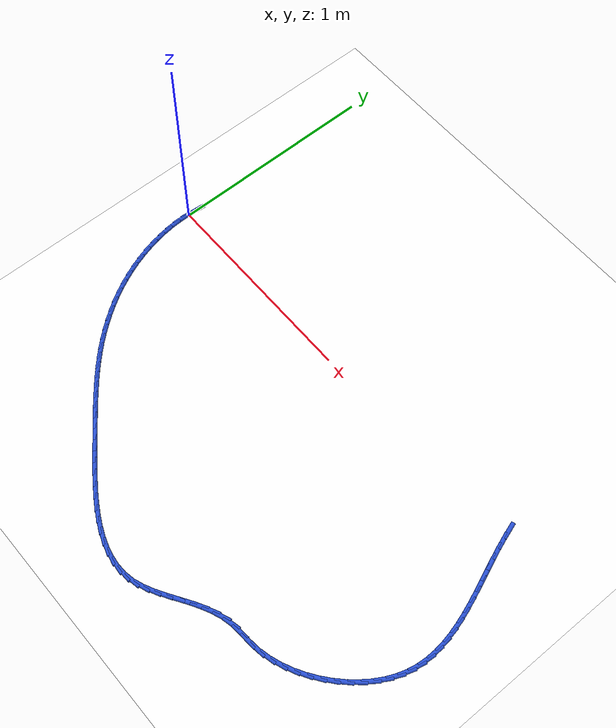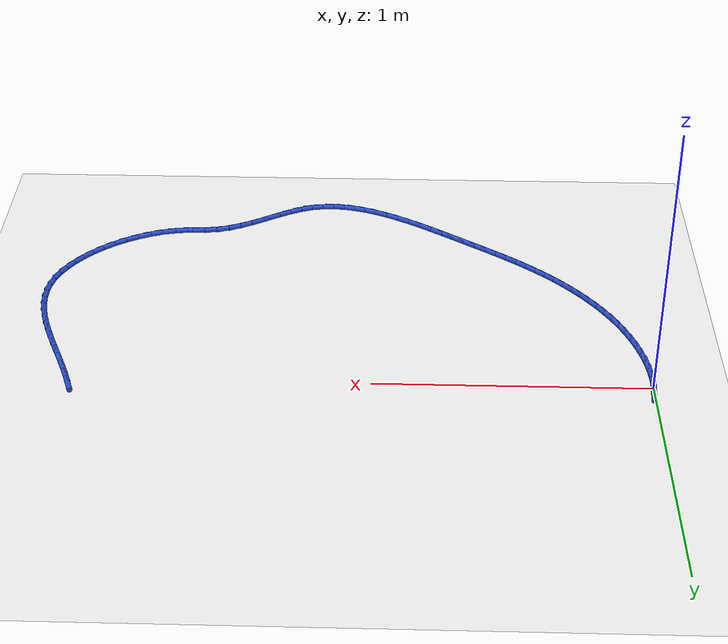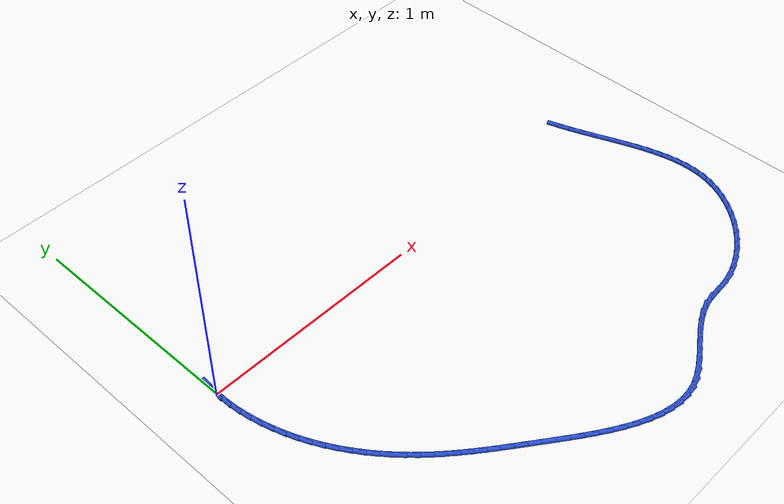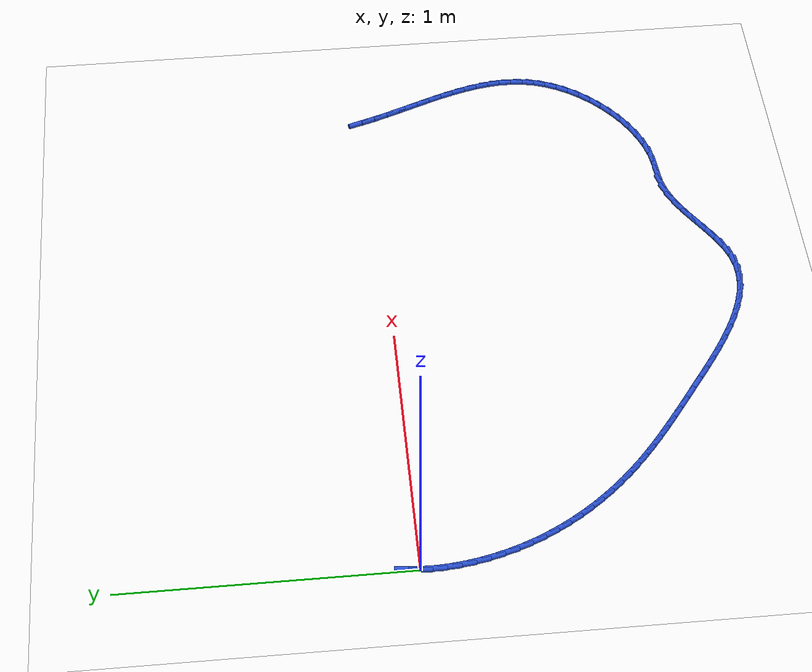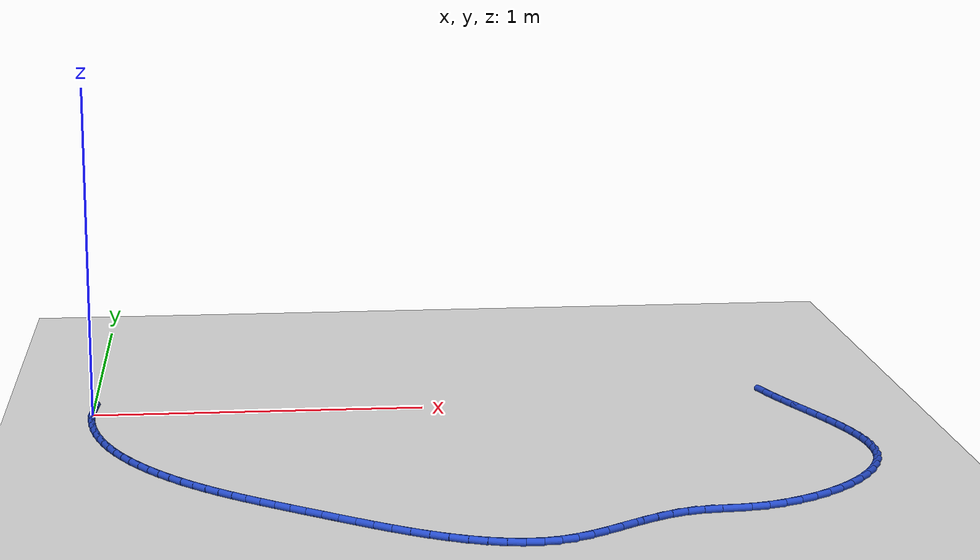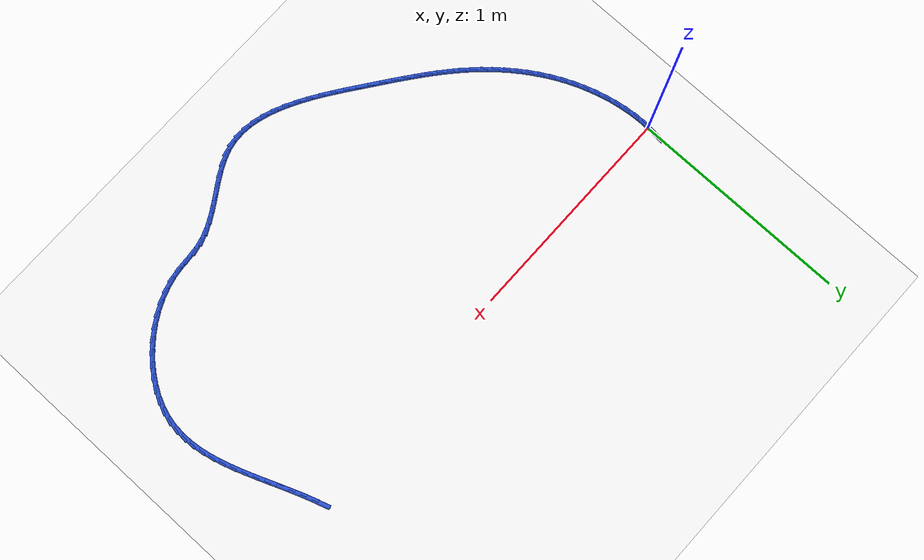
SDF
<sdf version="1.6">
 <world name="default">
  <model name="ground_plane">
   <static>1</static>
   <link name="link">
    <collision name="collision">
     <geometry><plane><normal>0 0 1</normal><size>100 100</size></plane></geometry>
     <surface><friction><ode><mu>100</mu><mu2>50</mu2></ode></friction></surface>
    </collision>
    <visual name="visual">
     <cast_shadows>0</cast_shadows>
     <geometry><plane><normal>0 0 1</normal><size>100 100</size></plane></geometry>
     <material>
      <script><uri>file://media/materials/scripts/gazebo.material</uri><name>Gazebo/WhiteGlow</name></script>
     </material>
    </visual>
   </link>
  </model>
  <model name="line">
   <link name="link_0">
    <pose>-6.938893903907228e-18 -1.249000902703301e-16 0.01 0 1.57 1.4895754016602116</pose>
    <collision name="collision">
     <geometry><cylinder><radius>0.01</radius><length>0.08</length></cylinder></geometry>
    </collision>
    <visual name="visual">
     <material>
      <script><name>Gazebo/Blue</name><uri>file://media/materials/scripts/gazebo.material</uri></script>
     </material>
     <geometry><cylinder><radius>0.01</radius><length>0.08</length></cylinder></geometry>
    </visual>
   </link>
   <link name="link_82">
    <pose>2.0744483165461785 0.045854442263884014 0.01 0 1.57 -1.2577375364356858</pose>
    <collision name="collision">
     <geometry><cylinder><radius>0.01</radius><length>0.08</length></cylinder></geometry>
    </collision>
    <visual name="visual">
     <material>
      <script><name>Gazebo/Blue</name><uri>file://media/materials/scripts/gazebo.material</uri></script>
     </material>
     <geometry><cylinder><radius>0.01</radius><length>0.08</length></cylinder></geometry>
    </visual>
   </link>
   <link name="link_83">
    <pose>2.0903925591439925 -0.0034012618303590654 0.01 0 1.57 -1.2280962346139435</pose>
    <collision name="collision">
     <geometry><cylinder><radius>0.01</radius><length>0.08</length></cylinder></geometry>
    </collision>
    <visual name="visual">
     <material>
      <script><name>Gazebo/Blue</name><uri>file://media/materials/scripts/gazebo.material</uri></script>
     </material>
     <geometry><cylinder><radius>0.01</radius><length>0.08</length></cylinder></geometry>
    </visual>
   </link>
   <link name="link_84">
    <pose>2.1078701009060747 -0.052388459206468535 0.01 0 1.57 -1.2079499464928736</pose>
    <collision name="collision">
     <geometry><cylinder><radius>0.01</radius><length>0.08</length></cylinder></geometry>
    </collision>
    <visual name="visual">
     <material>
      <script><name>Gazebo/Blue</name><uri>file://media/materials/scripts/gazebo.material</uri></script>
     </material>
     <geometry><cylinder><radius>0.01</radius><length>0.08</length></cylinder></geometry>
    </visual>
   </link>
   <link name="link_85">
    <pose>2.1263643025142116 -0.10110150909986627 0.01 0 1.57 -1.1970554379580245</pose>
    <collision name="collision">
     <geometry><cylinder><radius>0.01</radius><length>0.08</length></cylinder></geometry>
    </collision>
    <visual name="visual">
     <material>
      <script><name>Gazebo/Blue</name><uri>file://media/materials/scripts/gazebo.material</uri></script>
     </material>
     <geometry><cylinder><radius>0.01</radius><length>0.08</length></cylinder></geometry>
    </visual>
   </link>
   <link name="link_86">
    <pose>2.1453585246501943 -0.14953477074597454 0.01 0 1.57 -1.1953407749682754</pose>
    <collision name="collision">
     <geometry><cylinder><radius>0.01</radius><length>0.08</length></cylinder></geometry>
    </collision>
    <visual name="visual">
     <material>
      <script><name>Gazebo/Blue</name><uri>file://media/materials/scripts/gazebo.material</uri></script>
     </material>
     <geometry><cylinder><radius>0.01</radius><length>0.08</length></cylinder></geometry>
    </visual>
   </link>
   <link name="link_87">
    <pose>2.164336127995808 -0.19768260338021587 0.01 0 1.57 -1.2029328211580739</pose>
    <collision name="collision">
     <geometry><cylinder><radius>0.01</radius><length>0.08</length></cylinder></geometry>
    </collision>
    <visual name="visual">
     <material>
      <script><name>Gazebo/Blue</name><uri>file://media/materials/scripts/gazebo.material</uri></script>
     </material>
     <geometry><cylinder><radius>0.01</radius><length>0.08</length></cylinder></geometry>
    </visual>
   </link>
   <link name="link_88">
    <pose>2.1827804732328424 -0.24553936623801081 0.01 0 1.57 -1.2201716969757062</pose>
    <collision name="collision">
     <geometry><cylinder><radius>0.01</radius><length>0.08</length></cylinder></geometry>
    </collision>
    <visual name="visual">
     <material>
      <script><name>Gazebo/Blue</name><uri>file://media/materials/scripts/gazebo.material</uri></script>
     </material>
     <geometry><cylinder><radius>0.01</radius><length>0.08</length></cylinder></geometry>
    </visual>
   </link>
   <link name="link_89">
    <pose>2.200174921043086 -0.2930994185547821 0.01 0 1.57 -1.2476115682412294</pose>
    <collision name="collision">
     <geometry><cylinder><radius>0.01</radius><length>0.08</length></cylinder></geometry>
    </collision>
    <visual name="visual">
     <material>
      <script><name>Gazebo/Blue</name><uri>file://media/materials/scripts/gazebo.material</uri></script>
     </material>
     <geometry><cylinder><radius>0.01</radius><length>0.08</length></cylinder></geometry>
    </visual>
   </link>
   <link name="link_90">
    <pose>2.216002832108326 -0.3403571195659518 0.01 0 1.57 -1.2860000337122557</pose>
    <collision name="collision">
     <geometry><cylinder><radius>0.01</radius><length>0.08</length></cylinder></geometry>
    </collision>
    <visual name="visual">
     <material>
      <script><name>Gazebo/Blue</name><uri>file://media/materials/scripts/gazebo.material</uri></script>
     </material>
     <geometry><cylinder><radius>0.01</radius><length>0.08</length></cylinder></geometry>
    </visual>
   </link>
   <link name="link_91">
    <pose>2.2297475671103513 -0.38730682850694187 0.01 0 1.57 -1.3362194620847128</pose>
    <collision name="collision">
     <geometry><cylinder><radius>0.01</radius><length>0.08</length></cylinder></geometry>
    </collision>
    <visual name="visual">
     <material>
      <script><name>Gazebo/Blue</name><uri>file://media/materials/scripts/gazebo.material</uri></script>
     </material>
     <geometry><cylinder><radius>0.01</radius><length>0.08</length></cylinder></geometry>
    </visual>
   </link>
   <link name="link_92">
    <pose>2.24089248673095 -0.4339429046131753 0.01 0 1.57 -1.3991636648186943</pose>
    <collision name="collision">
     <geometry><cylinder><radius>0.01</radius><length>0.08</length></cylinder></geometry>
    </collision>
    <visual name="visual">
     <material>
      <script><name>Gazebo/Blue</name><uri>file://media/materials/scripts/gazebo.material</uri></script>
     </material>
     <geometry><cylinder><radius>0.01</radius><length>0.08</length></cylinder></geometry>
    </visual>
   </link>
   <link name="link_93">
    <pose>2.2489209516519093 -0.48025970712007227 0.01 0 1.57 -1.4755173005332283</pose>
    <collision name="collision">
     <geometry><cylinder><radius>0.01</radius><length>0.08</length></cylinder></geometry>
    </collision>
    <visual name="visual">
     <material>
      <script><name>Gazebo/Blue</name><uri>file://media/materials/scripts/gazebo.material</uri></script>
     </material>
     <geometry><cylinder><radius>0.01</radius><length>0.08</length></cylinder></geometry>
    </visual>
   </link>
   <link name="link_94">
    <pose>2.253316322555019 -0.5262515952630556 0.01 0 1.57 -1.56541682555562</pose>
    <collision name="collision">
     <geometry><cylinder><radius>0.01</radius><length>0.08</length></cylinder></geometry>
    </collision>
    <visual name="visual">
     <material>
      <script><name>Gazebo/Blue</name><uri>file://media/materials/scripts/gazebo.material</uri></script>
     </material>
     <geometry><cylinder><radius>0.01</radius><length>0.08</length></cylinder></geometry>
    </visual>
   </link>
   <link name="link_95">
    <pose>2.2535619601220667 -0.5719129282775476 0.01 0 1.57 1.4735699993029112</pose>
    <collision name="collision">
     <geometry><cylinder><radius>0.01</radius><length>0.08</length></cylinder></geometry>
    </collision>
    <visual name="visual">
     <material>
      <script><name>Gazebo/Blue</name><uri>file://media/materials/scripts/gazebo.material</uri></script>
     </material>
     <geometry><cylinder><radius>0.01</radius><length>0.08</length></cylinder></geometry>
    </visual>
   </link>
   <link name="link_96">
    <pose>2.2491412250348404 -0.6172380653989707 0.01 0 1.57 1.360458322292428</pose>
    <collision name="collision">
     <geometry><cylinder><radius>0.01</radius><length>0.08</length></cylinder></geometry>
    </collision>
    <visual name="visual">
     <material>
      <script><name>Gazebo/Blue</name><uri>file://media/materials/scripts/gazebo.material</uri></script>
     </material>
     <geometry><cylinder><radius>0.01</radius><length>0.08</length></cylinder></geometry>
    </visual>
   </link>
   <link name="link_97">
    <pose>2.2395374779751283 -0.6622213658627455 0.01 0 1.57 1.241564870937588</pose>
    <collision name="collision">
     <geometry><cylinder><radius>0.01</radius><length>0.08</length></cylinder></geometry>
    </collision>
    <visual name="visual">
     <material>
      <script><name>Gazebo/Blue</name><uri>file://media/materials/scripts/gazebo.material</uri></script>
     </material>
     <geometry><cylinder><radius>0.01</radius><length>0.08</length></cylinder></geometry>
    </visual>
   </link>
   <link name="link_98">
    <pose>2.2242967695544067 -0.706828354622385 0.01 0 1.57 1.1297638072268865</pose>
    <collision name="collision">
     <geometry><cylinder><radius>0.01</radius><length>0.08</length></cylinder></geometry>
    </collision>
    <visual name="visual">
     <material>
      <script><name>Gazebo/Blue</name><uri>file://media/materials/scripts/gazebo.material</uri></script>
     </material>
     <geometry><cylinder><radius>0.01</radius><length>0.08</length></cylinder></geometry>
    </visual>
   </link>
   <link name="link_99">
    <pose>2.2035643880273112 -0.750748936811438 0.01 0 1.57 1.0289454798745357</pose>
    <collision name="collision">
     <geometry><cylinder><radius>0.01</radius><length>0.08</length></cylinder></geometry>
    </collision>
    <visual name="visual">
     <material>
      <script><name>Gazebo/Blue</name><uri>file://media/materials/scripts/gazebo.material</uri></script>
     </material>
     <geometry><cylinder><radius>0.01</radius><length>0.08</length></cylinder></geometry>
    </visual>
   </link>
   <link name="link_100">
    <pose>2.177818462976116 -0.7935199269359784 0.01 0 1.57 0.9365278144941417</pose>
    <collision name="collision">
     <geometry><cylinder><radius>0.01</radius><length>0.08</length></cylinder></geometry>
    </collision>
    <visual name="visual">
     <material>
      <script><name>Gazebo/Blue</name><uri>file://media/materials/scripts/gazebo.material</uri></script>
     </material>
     <geometry><cylinder><radius>0.01</radius><length>0.08</length></cylinder></geometry>
    </visual>
   </link>
   <link name="link_101">
    <pose>2.1475406889811723 -0.8346764997784397 0.01 0 1.57 0.850009218456636</pose>
    <collision name="collision">
     <geometry><cylinder><radius>0.01</radius><length>0.08</length></cylinder></geometry>
    </collision>
    <visual name="visual">
     <material>
      <script><name>Gazebo/Blue</name><uri>file://media/materials/scripts/gazebo.material</uri></script>
     </material>
     <geometry><cylinder><radius>0.01</radius><length>0.08</length></cylinder></geometry>
    </visual>
   </link>
   <link name="link_102">
    <pose>2.113212760622836 -0.8737538301212536 0.01 0 1.57 0.7670859299110546</pose>
    <collision name="collision">
     <geometry><cylinder><radius>0.01</radius><length>0.08</length></cylinder></geometry>
    </collision>
    <visual name="visual">
     <material>
      <script><name>Gazebo/Blue</name><uri>file://media/materials/scripts/gazebo.material</uri></script>
     </material>
     <geometry><cylinder><radius>0.01</radius><length>0.08</length></cylinder></geometry>
    </visual>
   </link>
   <link name="link_103">
    <pose>2.07531637248146 -0.910287092746854 0.01 0 1.57 0.6856227868303771</pose>
    <collision name="collision">
     <geometry><cylinder><radius>0.01</radius><length>0.08</length></cylinder></geometry>
    </collision>
    <visual name="visual">
     <material>
      <script><name>Gazebo/Blue</name><uri>file://media/materials/scripts/gazebo.material</uri></script>
     </material>
     <geometry><cylinder><radius>0.01</radius><length>0.08</length></cylinder></geometry>
    </visual>
   </link>
   <link name="link_104">
    <pose>2.0343332191373977 -0.943811462437674 0.01 0 1.57 0.6035908490146126</pose>
    <collision name="collision">
     <geometry><cylinder><radius>0.01</radius><length>0.08</length></cylinder></geometry>
    </collision>
    <visual name="visual">
     <material>
      <script><name>Gazebo/Blue</name><uri>file://media/materials/scripts/gazebo.material</uri></script>
     </material>
     <geometry><cylinder><radius>0.01</radius><length>0.08</length></cylinder></geometry>
    </visual>
   </link>
   <link name="link_105">
    <pose>1.9907449951710041 -0.9738621139761467 0.01 0 1.57 0.5190008773252767</pose>
    <collision name="collision">
     <geometry><cylinder><radius>0.01</radius><length>0.08</length></cylinder></geometry>
    </collision>
    <visual name="visual">
     <material>
      <script><name>Gazebo/Blue</name><uri>file://media/materials/scripts/gazebo.material</uri></script>
     </material>
     <geometry><cylinder><radius>0.01</radius><length>0.08</length></cylinder></geometry>
    </visual>
   </link>
   <link name="link_106">
    <pose>1.9450333951626315 -0.9999742221447058 0.01 0 1.57 0.4298521911400216</pose>
    <collision name="collision">
     <geometry><cylinder><radius>0.01</radius><length>0.08</length></cylinder></geometry>
    </collision>
    <visual name="visual">
     <material>
      <script><name>Gazebo/Blue</name><uri>file://media/materials/scripts/gazebo.material</uri></script>
     </material>
     <geometry><cylinder><radius>0.01</radius><length>0.08</length></cylinder></geometry>
    </visual>
   </link>
   <link name="link_107">
    <pose>1.8976801136926351 -1.0216829617257832 0.01 0 1.57 0.3341182242900263</pose>
    <collision name="collision">
     <geometry><cylinder><radius>0.01</radius><length>0.08</length></cylinder></geometry>
    </collision>
    <visual name="visual">
     <material>
      <script><name>Gazebo/Blue</name><uri>file://media/materials/scripts/gazebo.material</uri></script>
     </material>
     <geometry><cylinder><radius>0.01</radius><length>0.08</length></cylinder></geometry>
    </visual>
   </link>
   <link name="link_108">
    <pose>1.8491668453413688 -1.0385235075018129 0.01 0 1.57 0.22980051145742142</pose>
    <collision name="collision">
     <geometry><cylinder><radius>0.01</radius><length>0.08</length></cylinder></geometry>
    </collision>
    <visual name="visual">
     <material>
      <script><name>Gazebo/Blue</name><uri>file://media/materials/scripts/gazebo.material</uri></script>
     </material>
     <geometry><cylinder><radius>0.01</radius><length>0.08</length></cylinder></geometry>
    </visual>
   </link>
   <link name="link_109">
    <pose>1.799975284689185 -1.0500310342552275 0.01 0 1.57 0.11932294190830635</pose>
    <collision name="collision">
     <geometry><cylinder><radius>0.01</radius><length>0.08</length></cylinder></geometry>
    </collision>
    <visual name="visual">
     <material>
      <script><name>Gazebo/Blue</name><uri>file://media/materials/scripts/gazebo.material</uri></script>
     </material>
     <geometry><cylinder><radius>0.01</radius><length>0.08</length></cylinder></geometry>
    </visual>
   </link>
   <link name="link_110">
    <pose>1.750590470946116 -1.0559519025966868 0.01 0 1.57 0.06151139462050264</pose>
    <collision name="collision">
     <geometry><cylinder><radius>0.01</radius><length>0.08</length></cylinder></geometry>
    </collision>
    <visual name="visual">
     <material>
      <script><name>Gazebo/Blue</name><uri>file://media/materials/scripts/gazebo.material</uri></script>
     </material>
     <geometry><cylinder><radius>0.01</radius><length>0.08</length></cylinder></geometry>
    </visual>
   </link>
   <link name="link_111">
    <pose>1.7015440076915997 -1.0589726297070738 0.01 0 1.57 0.10272796894315886</pose>
    <collision name="collision">
     <geometry><cylinder><radius>0.01</radius><length>0.08</length></cylinder></geometry>
    </collision>
    <visual name="visual">
     <material>
      <script><name>Gazebo/Blue</name><uri>file://media/materials/scripts/gazebo.material</uri></script>
     </material>
     <geometry><cylinder><radius>0.01</radius><length>0.08</length></cylinder></geometry>
    </visual>
   </link>
   <link name="link_112">
    <pose>1.6534016428609282 -1.0639356677335263 0.01 0 1.57 0.2375193923929107</pose>
    <collision name="collision">
     <geometry><cylinder><radius>0.01</radius><length>0.08</length></cylinder></geometry>
    </collision>
    <visual name="visual">
     <material>
      <script><name>Gazebo/Blue</name><uri>file://media/materials/scripts/gazebo.material</uri></script>
     </material>
     <geometry><cylinder><radius>0.01</radius><length>0.08</length></cylinder></geometry>
    </visual>
   </link>
   <link name="link_113">
    <pose>1.606668436027198 -1.0752492691391327 0.01 0 1.57 0.377547363521522</pose>
    <collision name="collision">
     <geometry><cylinder><radius>0.01</radius><length>0.08</length></cylinder></geometry>
    </collision>
    <visual name="visual">
     <material>
      <script><name>Gazebo/Blue</name><uri>file://media/materials/scripts/gazebo.material</uri></script>
     </material>
     <geometry><cylinder><radius>0.01</radius><length>0.08</length></cylinder></geometry>
    </visual>
   </link>
   <link name="link_114">
    <pose>1.561329458170791 -1.093229419772321 0.01 0 1.57 0.47791247409523924</pose>
    <collision name="collision">
     <geometry><cylinder><radius>0.01</radius><length>0.08</length></cylinder></geometry>
    </collision>
    <visual name="visual">
     <material>
      <script><name>Gazebo/Blue</name><uri>file://media/materials/scripts/gazebo.material</uri></script>
     </material>
     <geometry><cylinder><radius>0.01</radius><length>0.08</length></cylinder></geometry>
    </visual>
   </link>
   <link name="link_115">
    <pose>1.5171082941486773 -1.1161342316203662 0.01 0 1.57 0.5411470724645226</pose>
    <collision name="collision">
     <geometry><cylinder><radius>0.01</radius><length>0.08</length></cylinder></geometry>
    </collision>
    <visual name="visual">
     <material>
      <script><name>Gazebo/Blue</name><uri>file://media/materials/scripts/gazebo.material</uri></script>
     </material>
     <geometry><cylinder><radius>0.01</radius><length>0.08</length></cylinder></geometry>
    </visual>
   </link>
   <link name="link_116">
    <pose>1.4737265475777435 -1.1422062244772597 0.01 0 1.57 0.5705783880939681</pose>
    <collision name="collision">
     <geometry><cylinder><radius>0.01</radius><length>0.08</length></cylinder></geometry>
    </collision>
    <visual name="visual">
     <material>
      <script><name>Gazebo/Blue</name><uri>file://media/materials/scripts/gazebo.material</uri></script>
     </material>
     <geometry><cylinder><radius>0.01</radius><length>0.08</length></cylinder></geometry>
    </visual>
   </link>
   <link name="link_117">
    <pose>1.4309058220748778 -1.169687918136993 0.01 0 1.57 0.5678029331681314</pose>
    <collision name="collision">
     <geometry><cylinder><radius>0.01</radius><length>0.08</length></cylinder></geometry>
    </collision>
    <visual name="visual">
     <material>
      <script><name>Gazebo/Blue</name><uri>file://media/materials/scripts/gazebo.material</uri></script>
     </material>
     <geometry><cylinder><radius>0.01</radius><length>0.08</length></cylinder></geometry>
    </visual>
   </link>
   <link name="link_118">
    <pose>1.3883677212569685 -1.1968218323935582 0.01 0 1.57 0.5318765324115206</pose>
    <collision name="collision">
     <geometry><cylinder><radius>0.01</radius><length>0.08</length></cylinder></geometry>
    </collision>
    <visual name="visual">
     <material>
      <script><name>Gazebo/Blue</name><uri>file://media/materials/scripts/gazebo.material</uri></script>
     </material>
     <geometry><cylinder><radius>0.01</radius><length>0.08</length></cylinder></geometry>
    </visual>
   </link>
   <link name="link_119">
    <pose>1.345833848740902 -1.2218504870409472 0.01 0 1.57 0.4591879829061585</pose>
    <collision name="collision">
     <geometry><cylinder><radius>0.01</radius><length>0.08</length></cylinder></geometry>
    </collision>
    <visual name="visual">
     <material>
      <script><name>Gazebo/Blue</name><uri>file://media/materials/scripts/gazebo.material</uri></script>
     </material>
     <geometry><cylinder><radius>0.01</radius><length>0.08</length></cylinder></geometry>
    </visual>
   </link>
   <link name="link_120">
    <pose>1.3030258081435662 -1.2430164018731515 0.01 0 1.57 0.34424580052478143</pose>
    <collision name="collision">
     <geometry><cylinder><radius>0.01</radius><length>0.08</length></cylinder></geometry>
    </collision>
    <visual name="visual">
     <material>
      <script><name>Gazebo/Blue</name><uri>file://media/materials/scripts/gazebo.material</uri></script>
     </material>
     <geometry><cylinder><radius>0.01</radius><length>0.08</length></cylinder></geometry>
    </visual>
   </link>
   <link name="link_121">
    <pose>1.2596652030818476 -1.2585620966841633 0.01 0 1.57 0.19142054077924314</pose>
    <collision name="collision">
     <geometry><cylinder><radius>0.01</radius><length>0.08</length></cylinder></geometry>
    </collision>
    <visual name="visual">
     <material>
      <script><name>Gazebo/Blue</name><uri>file://media/materials/scripts/gazebo.material</uri></script>
     </material>
     <geometry><cylinder><radius>0.01</radius><length>0.08</length></cylinder></geometry>
    </visual>
   </link>
   <link name="link_122">
    <pose>1.2155408925606386 -1.267113093458719 0.01 0 1.57 0.03945476846977981</pose>
    <collision name="collision">
     <geometry><cylinder><radius>0.01</radius><length>0.08</length></cylinder></geometry>
    </collision>
    <visual name="visual">
     <material>
      <script><name>Gazebo/Blue</name><uri>file://media/materials/scripts/gazebo.material</uri></script>
     </material>
     <geometry><cylinder><radius>0.01</radius><length>0.08</length></cylinder></geometry>
    </visual>
   </link>
   <link name="link_123">
    <pose>1.1707204971728267 -1.2688823899521806 0.01 0 1.57 -0.09640573255746096</pose>
    <collision name="collision">
     <geometry><cylinder><radius>0.01</radius><length>0.08</length></cylinder></geometry>
    </collision>
    <visual name="visual">
     <material>
      <script><name>Gazebo/Blue</name><uri>file://media/materials/scripts/gazebo.material</uri></script>
     </material>
     <geometry><cylinder><radius>0.01</radius><length>0.08</length></cylinder></geometry>
    </visual>
   </link>
   <link name="link_124">
    <pose>1.1253438504339477 -1.2644942179993677 0.01 0 1.57 -0.21335982476012832</pose>
    <collision name="collision">
     <geometry><cylinder><radius>0.01</radius><length>0.08</length></cylinder></geometry>
    </collision>
    <visual name="visual">
     <material>
      <script><name>Gazebo/Blue</name><uri>file://media/materials/scripts/gazebo.material</uri></script>
     </material>
     <geometry><cylinder><radius>0.01</radius><length>0.08</length></cylinder></geometry>
    </visual>
   </link>
   <link name="link_125">
    <pose>1.07955078597565 -1.2545728100963256 0.01 0 1.57 -0.31143713867477457</pose>
    <collision name="collision">
     <geometry><cylinder><radius>0.01</radius><length>0.08</length></cylinder></geometry>
    </collision>
    <visual name="visual">
     <material>
      <script><name>Gazebo/Blue</name><uri>file://media/materials/scripts/gazebo.material</uri></script>
     </material>
     <geometry><cylinder><radius>0.01</radius><length>0.08</length></cylinder></geometry>
    </visual>
   </link>
   <link name="link_126">
    <pose>1.0334811374295798 -1.2397423987391007 0.01 0 1.57 -0.3922531659532696</pose>
    <collision name="collision">
     <geometry><cylinder><radius>0.01</radius><length>0.08</length></cylinder></geometry>
    </collision>
    <visual name="visual">
     <material>
      <script><name>Gazebo/Blue</name><uri>file://media/materials/scripts/gazebo.material</uri></script>
     </material>
     <geometry><cylinder><radius>0.01</radius><length>0.08</length></cylinder></geometry>
    </visual>
   </link>
   <link name="link_127">
    <pose>0.9872747384273862 -1.220627216423739 0.01 0 1.57 -0.45798817161029687</pose>
    <collision name="collision">
     <geometry><cylinder><radius>0.01</radius><length>0.08</length></cylinder></geometry>
    </collision>
    <visual name="visual">
     <material>
      <script><name>Gazebo/Blue</name><uri>file://media/materials/scripts/gazebo.material</uri></script>
     </material>
     <geometry><cylinder><radius>0.01</radius><length>0.08</length></cylinder></geometry>
    </visual>
   </link>
   <link name="link_128">
    <pose>0.9410714226007165 -1.1978514956462871 0.01 0 1.57 -0.5107891275306182</pose>
    <collision name="collision">
     <geometry><cylinder><radius>0.01</radius><length>0.08</length></cylinder></geometry>
    </collision>
    <visual name="visual">
     <material>
      <script><name>Gazebo/Blue</name><uri>file://media/materials/scripts/gazebo.material</uri></script>
     </material>
     <geometry><cylinder><radius>0.01</radius><length>0.08</length></cylinder></geometry>
    </visual>
   </link>
   <link name="link_129">
    <pose>0.8950110235812182 -1.1720394689027906 0.01 0 1.57 -0.5524980962855363</pose>
    <collision name="collision">
     <geometry><cylinder><radius>0.01</radius><length>0.08</length></cylinder></geometry>
    </collision>
    <visual name="visual">
     <material>
      <script><name>Gazebo/Blue</name><uri>file://media/materials/scripts/gazebo.material</uri></script>
     </material>
     <geometry><cylinder><radius>0.01</radius><length>0.08</length></cylinder></geometry>
    </visual>
   </link>
   <link name="link_130">
    <pose>0.849233375000539 -1.143815368689296 0.01 0 1.57 -0.5845638459468717</pose>
    <collision name="collision">
     <geometry><cylinder><radius>0.01</radius><length>0.08</length></cylinder></geometry>
    </collision>
    <visual name="visual">
     <material>
      <script><name>Gazebo/Blue</name><uri>file://media/materials/scripts/gazebo.material</uri></script>
     </material>
     <geometry><cylinder><radius>0.01</radius><length>0.08</length></cylinder></geometry>
    </visual>
   </link>
   <link name="link_131">
    <pose>0.8038783104903254 -1.1138034275018487 0.01 0 1.57 -0.6080343598477643</pose>
    <collision name="collision">
     <geometry><cylinder><radius>0.01</radius><length>0.08</length></cylinder></geometry>
    </collision>
    <visual name="visual">
     <material>
      <script><name>Gazebo/Blue</name><uri>file://media/materials/scripts/gazebo.material</uri></script>
     </material>
     <geometry><cylinder><radius>0.01</radius><length>0.08</length></cylinder></geometry>
    </visual>
   </link>
   <link name="link_132">
    <pose>0.7590856636822275 -1.0826278778364964 0.01 0 1.57 -0.6235724137790843</pose>
    <collision name="collision">
     <geometry><cylinder><radius>0.01</radius><length>0.08</length></cylinder></geometry>
    </collision>
    <visual name="visual">
     <material>
      <script><name>Gazebo/Blue</name><uri>file://media/materials/scripts/gazebo.material</uri></script>
     </material>
     <geometry><cylinder><radius>0.01</radius><length>0.08</length></cylinder></geometry>
    </visual>
   </link>
   <link name="link_133">
    <pose>0.7149952682078913 -1.050912952189284 0.01 0 1.57 -0.6314641604043496</pose>
    <collision name="collision">
     <geometry><cylinder><radius>0.01</radius><length>0.08</length></cylinder></geometry>
    </collision>
    <visual name="visual">
     <material>
      <script><name>Gazebo/Blue</name><uri>file://media/materials/scripts/gazebo.material</uri></script>
     </material>
     <geometry><cylinder><radius>0.01</radius><length>0.08</length></cylinder></geometry>
    </visual>
   </link>
   <link name="link_134">
    <pose>0.6717469576989649 -1.0192828830562577 0.01 0 1.57 -0.6327481867990795</pose>
    <collision name="collision">
     <geometry><cylinder><radius>0.01</radius><length>0.08</length></cylinder></geometry>
    </collision>
    <visual name="visual">
     <material>
      <script><name>Gazebo/Blue</name><uri>file://media/materials/scripts/gazebo.material</uri></script>
     </material>
     <geometry><cylinder><radius>0.01</radius><length>0.08</length></cylinder></geometry>
    </visual>
   </link>
   <link name="link_135">
    <pose>0.6294667258266008 -0.9882774218277814 0.01 0 1.57 -0.6347173726942079</pose>
    <collision name="collision">
     <geometry><cylinder><radius>0.01</radius><length>0.08</length></cylinder></geometry>
    </collision>
    <visual name="visual">
     <material>
      <script><name>Gazebo/Blue</name><uri>file://media/materials/scripts/gazebo.material</uri></script>
     </material>
     <geometry><cylinder><radius>0.01</radius><length>0.08</length></cylinder></geometry>
    </visual>
   </link>
   <link name="link_136">
    <pose>0.5881898509336329 -0.9578825805073593 0.01 0 1.57 -0.6405571069139999</pose>
    <collision name="collision">
     <geometry><cylinder><radius>0.01</radius><length>0.08</length></cylinder></geometry>
    </collision>
    <visual name="visual">
     <material>
      <script><name>Gazebo/Blue</name><uri>file://media/materials/scripts/gazebo.material</uri></script>
     </material>
     <geometry><cylinder><radius>0.01</radius><length>0.08</length></cylinder></geometry>
    </visual>
   </link>
   <link name="link_137">
    <pose>0.547915076328878 -0.9278613560059898 0.01 0 1.57 -0.6504666967847618</pose>
    <collision name="collision">
     <geometry><cylinder><radius>0.01</radius><length>0.08</length></cylinder></geometry>
    </collision>
    <visual name="visual">
     <material>
      <script><name>Gazebo/Blue</name><uri>file://media/materials/scripts/gazebo.material</uri></script>
     </material>
     <geometry><cylinder><radius>0.01</radius><length>0.08</length></cylinder></geometry>
    </visual>
   </link>
   <link name="link_138">
    <pose>0.5086410449746297 -0.8979761327050984 0.01 0 1.57 -0.6645768758596438</pose>
    <collision name="collision">
     <geometry><cylinder><radius>0.01</radius><length>0.08</length></cylinder></geometry>
    </collision>
    <visual name="visual">
     <material>
      <script><name>Gazebo/Blue</name><uri>file://media/materials/scripts/gazebo.material</uri></script>
     </material>
     <geometry><cylinder><radius>0.01</radius><length>0.08</length></cylinder></geometry>
    </visual>
   </link>
   <link name="link_139">
    <pose>0.47036639983318174 -0.8679892949861105 0.01 0 1.57 -0.682943483868804</pose>
    <collision name="collision">
     <geometry><cylinder><radius>0.01</radius><length>0.08</length></cylinder></geometry>
    </collision>
    <visual name="visual">
     <material>
      <script><name>Gazebo/Blue</name><uri>file://media/materials/scripts/gazebo.material</uri></script>
     </material>
     <geometry><cylinder><radius>0.01</radius><length>0.08</length></cylinder></geometry>
    </visual>
   </link>
   <link name="link_140">
    <pose>0.4330897838668284 -0.8376632272304525 0.01 0 1.57 -0.7055326543661314</pose>
    <collision name="collision">
     <geometry><cylinder><radius>0.01</radius><length>0.08</length></cylinder></geometry>
    </collision>
    <visual name="visual">
     <material>
      <script><name>Gazebo/Blue</name><uri>file://media/materials/scripts/gazebo.material</uri></script>
     </material>
     <geometry><cylinder><radius>0.01</radius><length>0.08</length></cylinder></geometry>
    </visual>
   </link>
   <link name="link_141">
    <pose>0.3968098400378631 -0.8067603138195495 0.01 0 1.57 -0.7322073780635568</pose>
    <collision name="collision">
     <geometry><cylinder><radius>0.01</radius><length>0.08</length></cylinder></geometry>
    </collision>
    <visual name="visual">
     <material>
      <script><name>Gazebo/Blue</name><uri>file://media/materials/scripts/gazebo.material</uri></script>
     </material>
     <geometry><cylinder><radius>0.01</radius><length>0.08</length></cylinder></geometry>
    </visual>
   </link>
   <link name="link_142">
    <pose>0.3615252113085812 -0.7750429391348286 0.01 0 1.57 -0.7627176464373158</pose>
    <collision name="collision">
     <geometry><cylinder><radius>0.01</radius><length>0.08</length></cylinder></geometry>
    </collision>
    <visual name="visual">
     <material>
      <script><name>Gazebo/Blue</name><uri>file://media/materials/scripts/gazebo.material</uri></script>
     </material>
     <geometry><cylinder><radius>0.01</radius><length>0.08</length></cylinder></geometry>
    </visual>
   </link>
   <link name="link_143">
    <pose>0.32723454064127594 -0.7422734875577149 0.01 0 1.57 -0.7966967610796918</pose>
    <collision name="collision">
     <geometry><cylinder><radius>0.01</radius><length>0.08</length></cylinder></geometry>
    </collision>
    <visual name="visual">
     <material>
      <script><name>Gazebo/Blue</name><uri>file://media/materials/scripts/gazebo.material</uri></script>
     </material>
     <geometry><cylinder><radius>0.01</radius><length>0.08</length></cylinder></geometry>
    </visual>
   </link>
   <link name="link_144">
    <pose>0.2939364709982415 -0.7082143434696344 0.01 0 1.57 -0.833466555324632</pose>
    <collision name="collision">
     <geometry><cylinder><radius>0.01</radius><length>0.08</length></cylinder></geometry>
    </collision>
    <visual name="visual">
     <material>
      <script><name>Gazebo/Blue</name><uri>file://media/materials/scripts/gazebo.material</uri></script>
     </material>
     <geometry><cylinder><radius>0.01</radius><length>0.08</length></cylinder></geometry>
    </visual>
   </link>
   <link name="link_145">
    <pose>0.26165352918246915 -0.6726684659122731 0.01 0 1.57 -0.8718633796507129</pose>
    <collision name="collision">
     <geometry><cylinder><radius>0.01</radius><length>0.08</length></cylinder></geometry>
    </collision>
    <visual name="visual">
     <material>
      <script><name>Gazebo/Blue</name><uri>file://media/materials/scripts/gazebo.material</uri></script>
     </material>
     <geometry><cylinder><radius>0.01</radius><length>0.08</length></cylinder></geometry>
    </visual>
   </link>
   <link name="link_146">
    <pose>0.23051335241091278 -0.6356173789826773 0.01 0 1.57 -0.9117542494432097</pose>
    <collision name="collision">
     <geometry><cylinder><radius>0.01</radius><length>0.08</length></cylinder></geometry>
    </collision>
    <visual name="visual">
     <material>
      <script><name>Gazebo/Blue</name><uri>file://media/materials/scripts/gazebo.material</uri></script>
     </material>
     <geometry><cylinder><radius>0.01</radius><length>0.08</length></cylinder></geometry>
    </visual>
   </link>
   <link name="link_147">
    <pose>0.20067248441380767 -0.5970917141208261 0.01 0 1.57 -0.9532807996455566</pose>
    <collision name="collision">
     <geometry><cylinder><radius>0.01</radius><length>0.08</length></cylinder></geometry>
    </collision>
    <visual name="visual">
     <material>
      <script><name>Gazebo/Blue</name><uri>file://media/materials/scripts/gazebo.material</uri></script>
     </material>
     <geometry><cylinder><radius>0.01</radius><length>0.08</length></cylinder></geometry>
    </visual>
   </link>
   <link name="link_148">
    <pose>0.17228746976923906 -0.5571221042070554 0.01 0 1.57 -0.9965693103911323</pose>
    <collision name="collision">
     <geometry><cylinder><radius>0.01</radius><length>0.08</length></cylinder></geometry>
    </collision>
    <visual name="visual">
     <material>
      <script><name>Gazebo/Blue</name><uri>file://media/materials/scripts/gazebo.material</uri></script>
     </material>
     <geometry><cylinder><radius>0.01</radius><length>0.08</length></cylinder></geometry>
    </visual>
   </link>
   <link name="link_149">
    <pose>0.14551485305529302 -0.5157391821217022 0.01 0 1.57 -1.04172672038067</pose>
    <collision name="collision">
     <geometry><cylinder><radius>0.01</radius><length>0.08</length></cylinder></geometry>
    </collision>
    <visual name="visual">
     <material>
      <script><name>Gazebo/Blue</name><uri>file://media/materials/scripts/gazebo.material</uri></script>
     </material>
     <geometry><cylinder><radius>0.01</radius><length>0.08</length></cylinder></geometry>
    </visual>
   </link>
   <link name="link_150">
    <pose>0.12051117885005545 -0.47297358074510326 0.01 0 1.57 -1.088835585501638</pose>
    <collision name="collision">
     <geometry><cylinder><radius>0.01</radius><length>0.08</length></cylinder></geometry>
    </collision>
    <visual name="visual">
     <material>
      <script><name>Gazebo/Blue</name><uri>file://media/materials/scripts/gazebo.material</uri></script>
     </material>
     <geometry><cylinder><radius>0.01</radius><length>0.08</length></cylinder></geometry>
    </visual>
   </link>
   <link name="link_151">
    <pose>0.09743299173161189 -0.4288559329575941 0.01 0 1.57 -1.1379481163242269</pose>
    <collision name="collision">
     <geometry><cylinder><radius>0.01</radius><length>0.08</length></cylinder></geometry>
    </collision>
    <visual name="visual">
     <material>
      <script><name>Gazebo/Blue</name><uri>file://media/materials/scripts/gazebo.material</uri></script>
     </material>
     <geometry><cylinder><radius>0.01</radius><length>0.08</length></cylinder></geometry>
    </visual>
   </link>
   <link name="link_152">
    <pose>0.07643683627804916 -0.3834168716395133 0.01 0 1.57 -1.1886707737734854</pose>
    <collision name="collision">
     <geometry><cylinder><radius>0.01</radius><length>0.08</length></cylinder></geometry>
    </collision>
    <visual name="visual">
     <material>
      <script><name>Gazebo/Blue</name><uri>file://media/materials/scripts/gazebo.material</uri></script>
     </material>
     <geometry><cylinder><radius>0.01</radius><length>0.08</length></cylinder></geometry>
    </visual>
   </link>
   <link name="link_153">
    <pose>0.057675126116377214 -0.3367319526763898 0.01 0 1.57 -1.239573797412627</pose>
    <collision name="collision">
     <geometry><cylinder><radius>0.01</radius><length>0.08</length></cylinder></geometry>
    </collision>
    <visual name="visual">
     <material>
      <script><name>Gazebo/Blue</name><uri>file://media/materials/scripts/gazebo.material</uri></script>
     </material>
     <geometry><cylinder><radius>0.01</radius><length>0.08</length></cylinder></geometry>
    </visual>
   </link>
   <link name="link_154">
    <pose>0.04128294315149083 -0.28906520986800294 0.01 0 1.57 -1.2909272573412507</pose>
    <collision name="collision">
     <geometry><cylinder><radius>0.01</radius><length>0.08</length></cylinder></geometry>
    </collision>
    <visual name="visual">
     <material>
      <script><name>Gazebo/Blue</name><uri>file://media/materials/scripts/gazebo.material</uri></script>
     </material>
     <geometry><cylinder><radius>0.01</radius><length>0.08</length></cylinder></geometry>
    </visual>
   </link>
   <link name="link_155">
    <pose>0.027390824599752228 -0.24073009930522588 0.01 0 1.57 -1.3435030630109748</pose>
    <collision name="collision">
     <geometry><cylinder><radius>0.01</radius><length>0.08</length></cylinder></geometry>
    </collision>
    <visual name="visual">
     <material>
      <script><name>Gazebo/Blue</name><uri>file://media/materials/scripts/gazebo.material</uri></script>
     </material>
     <geometry><cylinder><radius>0.01</radius><length>0.08</length></cylinder></geometry>
    </visual>
   </link>
   <link name="link_156">
    <pose>0.01612930766006765 -0.19204007726875813 0.01 0 1.57 -1.3981008576734892</pose>
    <collision name="collision">
     <geometry><cylinder><radius>0.01</radius><length>0.08</length></cylinder></geometry>
    </collision>
    <visual name="visual">
     <material>
      <script><name>Gazebo/Blue</name><uri>file://media/materials/scripts/gazebo.material</uri></script>
     </material>
     <geometry><cylinder><radius>0.01</radius><length>0.08</length></cylinder></geometry>
    </visual>
   </link>
   <link name="link_157">
    <pose>0.007628929531343871 -0.14330860003930185 0.01 0 1.57 -1.4555689723983853</pose>
    <collision name="collision">
     <geometry><cylinder><radius>0.01</radius><length>0.08</length></cylinder></geometry>
    </collision>
    <visual name="visual">
     <material>
      <script><name>Gazebo/Blue</name><uri>file://media/materials/scripts/gazebo.material</uri></script>
     </material>
     <geometry><cylinder><radius>0.01</radius><length>0.08</length></cylinder></geometry>
    </visual>
   </link>
   <link name="link_158">
    <pose>0.0020202274124870648 -0.09484912389755638 0.01 0 1.57 -1.5168218163195935</pose>
    <collision name="collision">
     <geometry><cylinder><radius>0.01</radius><length>0.08</length></cylinder></geometry>
    </collision>
    <visual name="visual">
     <material>
      <script><name>Gazebo/Blue</name><uri>file://media/materials/scripts/gazebo.material</uri></script>
     </material>
     <geometry><cylinder><radius>0.01</radius><length>0.08</length></cylinder></geometry>
    </visual>
   </link>
   <link name="link_159">
    <pose>-0.0005662614975963671 -0.04697510512422234 0.01 0 1.57 1.5587424086508384</pose>
    <collision name="collision">
     <geometry><cylinder><radius>0.01</radius><length>0.08</length></cylinder></geometry>
    </collision>
    <visual name="visual">
     <material>
      <script><name>Gazebo/Blue</name><uri>file://media/materials/scripts/gazebo.material</uri></script>
     </material>
     <geometry><cylinder><radius>0.01</radius><length>0.08</length></cylinder></geometry>
    </visual>
   </link>
   <link name="link_160">
    <pose>-2.42861286636753e-17 6.938893903907228e-18 0.01 0 1.57 1.4868741688376037</pose>
    <collision name="collision">
     <geometry><cylinder><radius>0.01</radius><length>0.08</length></cylinder></geometry>
    </collision>
    <visual name="visual">
     <material>
      <script><name>Gazebo/Blue</name><uri>file://media/materials/scripts/gazebo.material</uri></script>
     </material>
     <geometry><cylinder><radius>0.01</radius><length>0.08</length></cylinder></geometry>
    </visual>
   </link>
   <link name="link_161">
    <pose>0.003849549104182573 0.04576273519441104 0.01 0 1.57 1.4868741688376044</pose>
    <collision name="collision">
     <geometry><cylinder><radius>0.01</radius><length>0.08</length></cylinder></geometry>
    </collision>
    <visual name="visual">
     <material>
      <script><name>Gazebo/Blue</name><uri>file://media/materials/scripts/gazebo.material</uri></script>
     </material>
     <geometry><cylinder><radius>0.01</radius><length>0.08</length></cylinder></geometry>
    </visual>
   </link>
  </model>
 </world>
</sdf>
